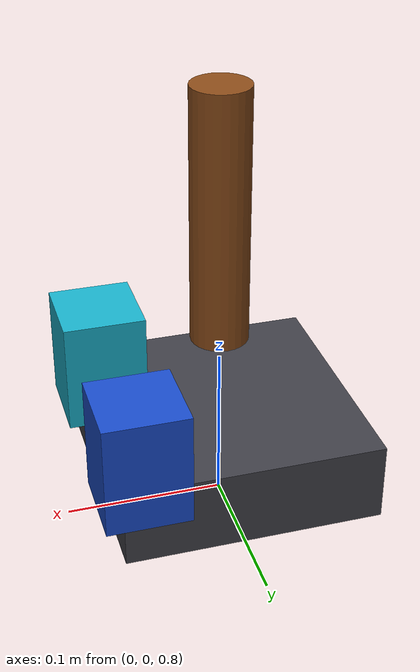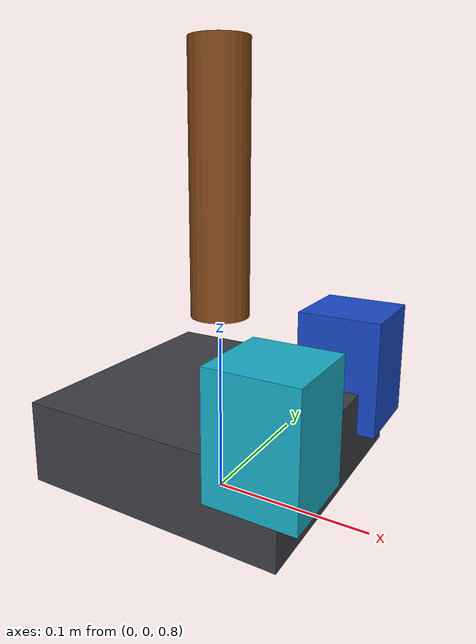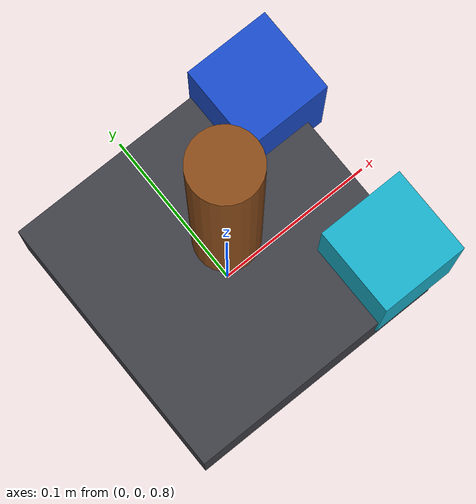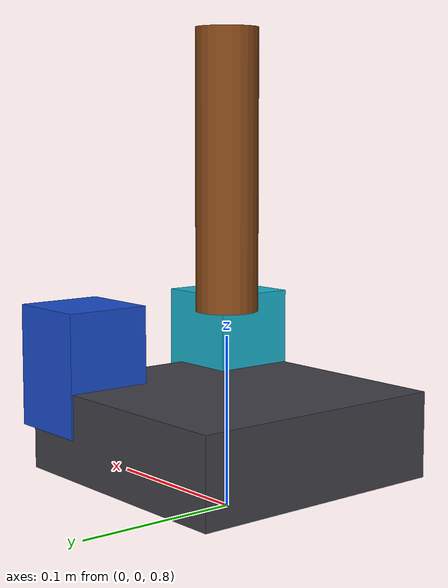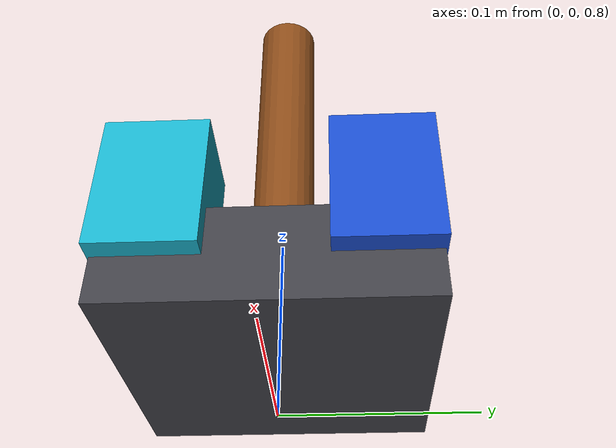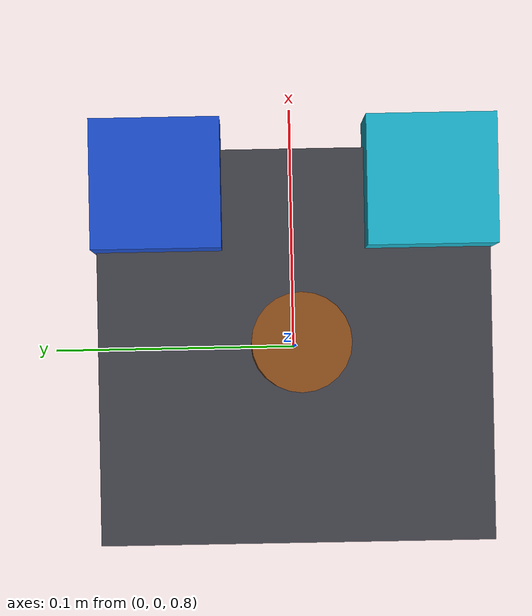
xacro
<?xml version="1.0"?>
<robot name="welding_sensor_rig_preview" xmlns:xacro="http://www.ros.org/wiki/xacro">
  <xacro:include filename="$(find welding_description)/urdf/sensor_rig_macro.xacro"/>
  <link name="base_link"/>
  <link name="flange_link"/>
  <joint name="preview_flange_joint" type="fixed"><parent link="base_link"/><child link="flange_link"/><origin xyz="0 0 0.8"/></joint>
  <xacro:welding_sensor_rig parent="flange_link"/>
</robot>

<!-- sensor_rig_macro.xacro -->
<robot xmlns:xacro="http://www.ros.org/wiki/xacro">
  <xacro:macro name="welding_sensor_rig" params="
      parent
      camera_650_xyz:='0.065 0.055 0.080' camera_650_rpy:='0 0 0'
      camera_450_xyz:='0.065 -0.055 0.080' camera_450_rpy:='0 0 0'
      torch_xyz:='0 0 0.115' torch_rpy:='0 0 0'">

    <link name="welding_tool_carrier">
      <visual><geometry><box size="0.16 0.16 0.05"/></geometry><material name="carrier_gray"><color rgba="0.25 0.25 0.28 1"/></material></visual>
      <collision><geometry><box size="0.18 0.18 0.065"/></geometry></collision>
      <inertial><mass value="2.0"/><origin xyz="0 0 0"/><inertia ixx="0.01" ixy="0" ixz="0" iyy="0.01" iyz="0" izz="0.01"/></inertial>
    </link>
    <joint name="welding_tool_carrier_joint" type="fixed">
      <parent link="${parent}"/><child link="welding_tool_carrier"/><origin xyz="0 0 0.045" rpy="0 0 0"/>
    </joint>

    <xacro:macro name="camera_body" params="name xyz rpy color">
      <link name="${name}_body">
        <visual><geometry><box size="0.052 0.052 0.072"/></geometry><material name="${name}_color"><color rgba="${color}"/></material></visual>
        <collision><geometry><box size="0.062 0.062 0.082"/></geometry></collision>
        <inertial><mass value="0.45"/><origin xyz="0 0 0"/><inertia ixx="0.0004" ixy="0" ixz="0" iyy="0.0004" iyz="0" izz="0.0004"/></inertial>
      </link>
      <joint name="${name}_mount_joint" type="fixed">
        <parent link="${parent}"/><child link="${name}_body"/><origin xyz="${xyz}" rpy="${rpy}"/>
      </joint>
      <link name="${name}_nominal_optical_frame"/>
      <joint name="${name}_optical_joint" type="fixed">
        <parent link="${name}_body"/><child link="${name}_nominal_optical_frame"/>
        <origin xyz="0 0 0.036" rpy="-1.57079632679 0 -1.57079632679"/>
      </joint>
    </xacro:macro>
    <xacro:camera_body name="camera_650" xyz="${camera_650_xyz}" rpy="${camera_650_rpy}" color="0.1 0.3 0.8 1"/>
    <xacro:camera_body name="camera_450" xyz="${camera_450_xyz}" rpy="${camera_450_rpy}" color="0.1 0.7 0.8 1"/>

    <link name="welding_torch">
      <visual><origin xyz="0 0 0.08"/><geometry><cylinder radius="0.018" length="0.16"/></geometry><material name="torch_bronze"><color rgba="0.55 0.3 0.1 1"/></material></visual>
      <collision><origin xyz="0 0 0.08"/><geometry><cylinder radius="0.028" length="0.18"/></geometry></collision>
      <inertial><mass value="1.0"/><origin xyz="0 0 0.08"/><inertia ixx="0.002" ixy="0" ixz="0" iyy="0.002" iyz="0" izz="0.0003"/></inertial>
    </link>
    <joint name="welding_torch_joint" type="fixed">
      <parent link="${parent}"/><child link="welding_torch"/><origin xyz="${torch_xyz}" rpy="${torch_rpy}"/>
    </joint>
    <link name="torch_tcp"/>
    <joint name="torch_tcp_joint" type="fixed">
      <parent link="welding_torch"/><child link="torch_tcp"/><origin xyz="0 0 0.17" rpy="0 0 0"/>
    </joint>
  </xacro:macro>
</robot>
